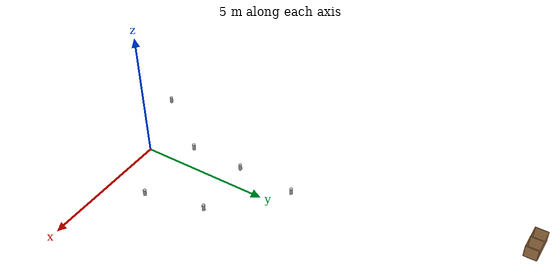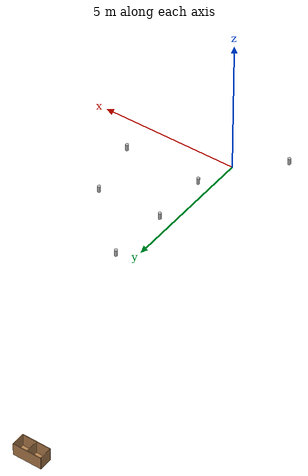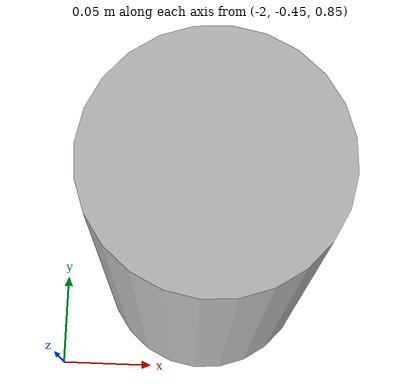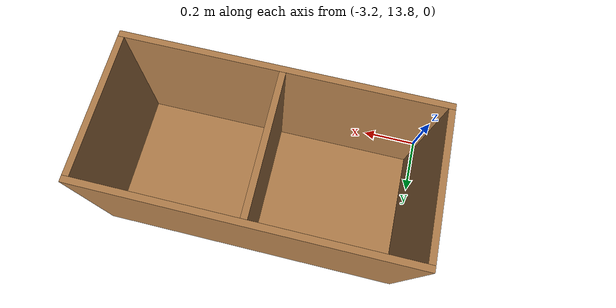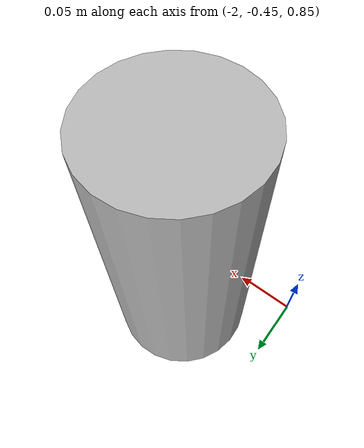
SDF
<sdf version="1.6">
 <world name="default">
  <light name="sun" type="directional">
   <pose>0 0 10 0 -0 0</pose>
   <diffuse>0.8 0.8 0.8 1</diffuse>
   <specular>0.2 0.2 0.2 1</specular>
   <attenuation>
    <range>1000</range>
    <constant>0.9</constant>
    <linear>0.01</linear>
    <quadratic>0.001</quadratic>
   </attenuation>
   <direction>-0.5 0.5 -1</direction>
  </light>
  <gravity>0 0 -9.8</gravity>
  <magnetic_field>6e-06 2.3e-05 -4.2e-05</magnetic_field>
  <atmosphere type="adiabatic"/>
  <physics name="default_physics" default="0" type="ode">
   <max_step_size>0.01</max_step_size>
   <real_time_factor>1</real_time_factor>
   <real_time_update_rate>100</real_time_update_rate>
   <ode>
    <solver>
     <type>quick</type>
     <iters>100</iters>
     <precon_iters>0</precon_iters>
     <sor>1</sor>
     <use_dynamic_moi_rescaling>0</use_dynamic_moi_rescaling>
    </solver>
    <constraints>
     <cfm>0</cfm>
     <erp>0.5</erp>
     <contact_max_correcting_vel>1000</contact_max_correcting_vel>
     <contact_surface_layer>0</contact_surface_layer>
    </constraints>
   </ode>
  </physics>
  <scene><ambient>0.4 0.4 0.4 1</ambient><background>0.7 0.7 0.7 1</background><shadows>0</shadows></scene>
  <spherical_coordinates>
   <surface_model>EARTH_WGS84</surface_model>
   <latitude_deg>0</latitude_deg>
   <longitude_deg>0</longitude_deg>
   <elevation>0</elevation>
   <heading_deg>0</heading_deg>
  </spherical_coordinates>
  <light name="user_point_light_0" type="point">
   <pose>3.54976 1.43038 1 0 -0 0</pose>
   <diffuse>0.5 0.5 0.5 1</diffuse>
   <specular>0.1 0.1 0.1 1</specular>
   <attenuation>
    <range>20</range>
    <constant>0.5</constant>
    <linear>0.01</linear>
    <quadratic>0.001</quadratic>
   </attenuation>
   <cast_shadows>0</cast_shadows>
   <direction>0 0 -1</direction>
  </light>
  <light name="user_point_light_0_clone" type="point">
   <pose>-8.02842 6.22549 7.18798 0 -0 0</pose>
   <diffuse>0.5 0.5 0.5 1</diffuse>
   <specular>0.1 0.1 0.1 1</specular>
   <direction>0 0 -1</direction>
   <attenuation>
    <range>20</range>
    <constant>0.5</constant>
    <linear>0.01</linear>
    <quadratic>0.001</quadratic>
   </attenuation>
   <cast_shadows>0</cast_shadows>
  </light>
  <audio><device>default</device></audio>
  <model name="beer">
   <link name="link">
    <pose>0 0 0.115 0 -0 0</pose>
    <inertial>
     <mass>0.39</mass>
     <inertia><ixx>0.00058</ixx><ixy>0</ixy><ixz>0</ixz><iyy>0.00058</iyy><iyz>0</iyz><izz>0.00019</izz></inertia>
    </inertial>
    <collision name="collision">
     <geometry><cylinder><radius>0.055</radius><length>0.23</length></cylinder></geometry>
    </collision>
    <visual name="visual">
     <geometry><cylinder><radius>0.055</radius><length>0.23</length></cylinder></geometry>
     <material>
      <script>
       <uri>model://beer/materials/scripts</uri>
       <uri>model://beer/materials/textures</uri>
       <name>Beer/Diffuse</name>
      </script>
     </material>
    </visual>
   </link>
   <pose>0.016629 6.29425 0.853013 -0.002556 -0.000327 -0.078393</pose>
  </model>
  <model name="cabinet">
   <static>1</static>
   <link name="cabinet_bottom_plate">
    <inertial>
     <pose>0 0 -1 0 -0 0</pose>
     <inertia><ixx>2.05</ixx><ixy>0</ixy><ixz>0</ixz><iyy>2.05</iyy><iyz>0</iyz><izz>2.05</izz></inertia>
     <mass>25</mass>
    </inertial>
    <collision name="cabinet_bottom_plate_geom">
     <pose>0 0 0.01 0 -0 0</pose>
     <geometry><box><size>0.45 0.45 0.02</size></box></geometry>
    </collision>
    <visual name="cabinet_bottom_plate_geom_visual">
     <pose>0 0 0.01 0 -0 0</pose>
     <geometry><box><size>0.45 0.45 0.02</size></box></geometry>
     <material>
      <script><uri>file://media/materials/scripts/gazebo.material</uri><name>Gazebo/Wood</name></script>
     </material>
    </visual>
    <collision name="cabinet_bottom_plate_geom_cabinet_back_plate">
     <pose>0.235 0 0.51 0 -0 0</pose>
     <geometry><box><size>0.02 0.45 1.02</size></box></geometry>
    </collision>
    <visual name="cabinet_bottom_plate_geom_cabinet_back_plate_visual">
     <pose>0.235 0 0.51 0 -0 0</pose>
     <geometry><box><size>0.02 0.45 1.02</size></box></geometry>
     <material>
      <script><uri>file://media/materials/scripts/gazebo.material</uri><name>Gazebo/Wood</name></script>
     </material>
    </visual>
    <collision name="cabinet_bottom_plate_geom_cabinet_left_plate">
     <pose>0 0.235 0.51 0 -0 0</pose>
     <geometry><box><size>0.45 0.02 1.02</size></box></geometry>
    </collision>
    <visual name="cabinet_bottom_plate_geom_cabinet_left_plate_visual">
     <pose>0 0.235 0.51 0 -0 0</pose>
     <geometry><box><size>0.45 0.02 1.02</size></box></geometry>
     <material>
      <script><uri>file://media/materials/scripts/gazebo.material</uri><name>Gazebo/Wood</name></script>
     </material>
    </visual>
    <collision name="cabinet_bottom_plate_geom_cabinet_middle_plate">
     <pose>0 0 0.51 0 -0 0</pose>
     <geometry><box><size>0.45 0.45 0.02</size></box></geometry>
    </collision>
    <visual name="cabinet_bottom_plate_geom_cabinet_middle_plate_visual">
     <pose>0 0 0.51 0 -0 0</pose>
     <geometry><box><size>0.45 0.45 0.02</size></box></geometry>
     <material>
      <script><uri>file://media/materials/scripts/gazebo.material</uri><name>Gazebo/Wood</name></script>
     </material>
    </visual>
    <collision name="cabinet_bottom_plate_geom_cabinet_right_plate">
     <pose>0 -0.235 0.51 0 -0 0</pose>
     <geometry><box><size>0.45 0.02 1.02</size></box></geometry>
    </collision>
    <visual name="cabinet_bottom_plate_geom_cabinet_right_plate_visual">
     <pose>0 -0.235 0.51 0 -0 0</pose>
     <geometry><box><size>0.45 0.02 1.02</size></box></geometry>
     <material>
      <script><uri>file://media/materials/scripts/gazebo.material</uri><name>Gazebo/Wood</name></script>
     </material>
    </visual>
    <collision name="cabinet_bottom_plate_geom_cabinet_top_plate">
     <pose>0 0 1.01 0 -0 0</pose>
     <geometry><box><size>0.45 0.45 0.02</size></box></geometry>
    </collision>
    <visual name="cabinet_bottom_plate_geom_cabinet_top_plate_visual">
     <pose>0 0 1.01 0 -0 0</pose>
     <geometry><box><size>0.45 0.45 0.02</size></box></geometry>
     <material>
      <script><uri>file://media/materials/scripts/gazebo.material</uri><name>Gazebo/Wood</name></script>
     </material>
    </visual>
   </link>
   <pose>-3.17361 14.1413 0.321766 0 1.56155 0</pose>
  </model>
  <model name="beer_clone_0">
   <link name="link">
    <pose>0 0 0.115 0 -0 0</pose>
    <inertial>
     <mass>0.39</mass>
     <inertia><ixx>0.00058</ixx><ixy>0</ixy><ixz>0</ixz><iyy>0.00058</iyy><iyz>0</iyz><izz>0.00019</izz></inertia>
    </inertial>
    <collision name="collision">
     <geometry><cylinder><radius>0.055</radius><length>0.23</length></cylinder></geometry>
    </collision>
    <visual name="visual">
     <geometry><cylinder><radius>0.055</radius><length>0.23</length></cylinder></geometry>
     <material>
      <script>
       <uri>model://beer/materials/scripts</uri>
       <uri>model://beer/materials/textures</uri>
       <name>Beer/Diffuse</name>
      </script>
     </material>
    </visual>
   </link>
   <pose>2.67672 2.06208 0.852286 0.000283 0.000218 -0.084545</pose>
  </model>
  <model name="beer_clone">
   <link name="link">
    <pose>0 0 0.115 0 -0 0</pose>
    <inertial>
     <mass>0.39</mass>
     <inertia><ixx>0.00058</ixx><ixy>0</ixy><ixz>0</ixz><iyy>0.00058</iyy><iyz>0</iyz><izz>0.00019</izz></inertia>
    </inertial>
    <collision name="collision">
     <geometry><cylinder><radius>0.055</radius><length>0.23</length></cylinder></geometry>
    </collision>
    <visual name="visual">
     <geometry><cylinder><radius>0.055</radius><length>0.23</length></cylinder></geometry>
     <material>
      <script>
       <uri>model://beer/materials/scripts</uri>
       <uri>model://beer/materials/textures</uri>
       <name>Beer/Diffuse</name>
      </script>
     </material>
    </visual>
   </link>
   <pose>-1.92048 -0.395445 0.85316 0.000259 3.4e-05 -0.078166</pose>
  </model>
  <model name="beer_clone_1">
   <link name="link">
    <pose>0 0 0.115 0 -0 0</pose>
    <inertial>
     <mass>0.39</mass>
     <inertia><ixx>0.00058</ixx><ixy>0</ixy><ixz>0</ixz><iyy>0.00058</iyy><iyz>0</iyz><izz>0.00019</izz></inertia>
    </inertial>
    <collision name="collision">
     <geometry><cylinder><radius>0.055</radius><length>0.23</length></cylinder></geometry>
    </collision>
    <visual name="visual">
     <geometry><cylinder><radius>0.055</radius><length>0.23</length></cylinder></geometry>
     <material>
      <script>
       <uri>model://beer/materials/scripts</uri>
       <uri>model://beer/materials/textures</uri>
       <name>Beer/Diffuse</name>
      </script>
     </material>
    </visual>
   </link>
   <pose>-0.108269 2.0648 0.853128 0.000349 5.3e-05 -0.079114</pose>
  </model>
  <model name="beer_clone_1_clone">
   <link name="link">
    <pose>0 0 0.115 0 -0 0</pose>
    <inertial>
     <mass>0.39</mass>
     <inertia><ixx>0.00058</ixx><ixy>0</ixy><ixz>0</ixz><iyy>0.00058</iyy><iyz>0</iyz><izz>0.00019</izz></inertia>
    </inertial>
    <collision name="collision">
     <geometry><cylinder><radius>0.055</radius><length>0.23</length></cylinder></geometry>
    </collision>
    <visual name="visual">
     <geometry><cylinder><radius>0.055</radius><length>0.23</length></cylinder></geometry>
     <material>
      <script>
       <uri>model://beer/materials/scripts</uri>
       <uri>model://beer/materials/textures</uri>
       <name>Beer/Diffuse</name>
      </script>
     </material>
    </visual>
   </link>
   <pose>-0.090231 4.11852 0.853141 0.000109 2.4e-05 -0.07902</pose>
  </model>
  <model name="beer_clone_1_clone_clone">
   <link name="link">
    <pose>0 0 0.115 0 -0 0</pose>
    <inertial>
     <mass>0.39</mass>
     <inertia><ixx>0.00058</ixx><ixy>0</ixy><ixz>0</ixz><iyy>0.00058</iyy><iyz>0</iyz><izz>0.00019</izz></inertia>
    </inertial>
    <collision name="collision">
     <geometry><cylinder><radius>0.055</radius><length>0.23</length></cylinder></geometry>
    </collision>
    <visual name="visual">
     <geometry><cylinder><radius>0.055</radius><length>0.23</length></cylinder></geometry>
     <material>
      <script>
       <uri>model://beer/materials/scripts</uri>
       <uri>model://beer/materials/textures</uri>
       <name>Beer/Diffuse</name>
      </script>
     </material>
    </visual>
   </link>
   <pose>2.20899 4.20171 0.853027 -0.002234 -0.000237 -0.079047</pose>
  </model>
 </world>
</sdf>
